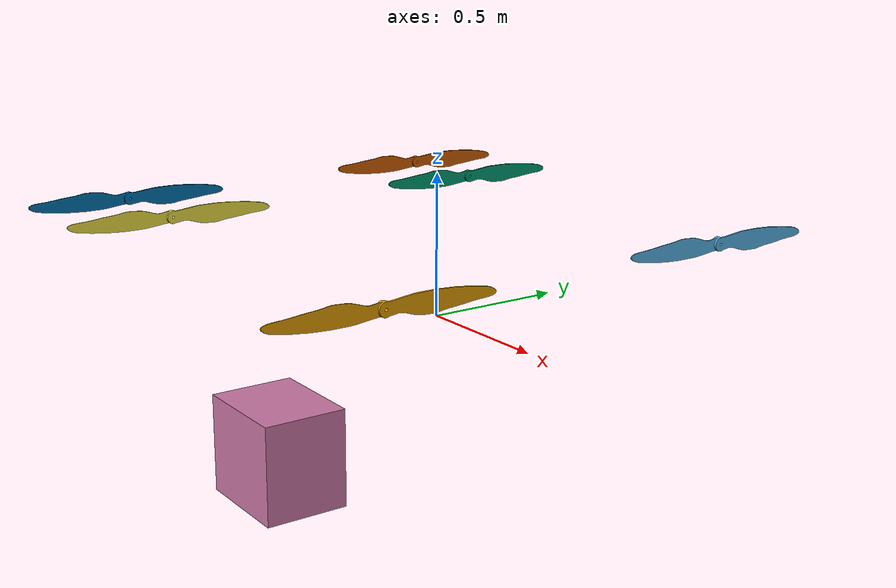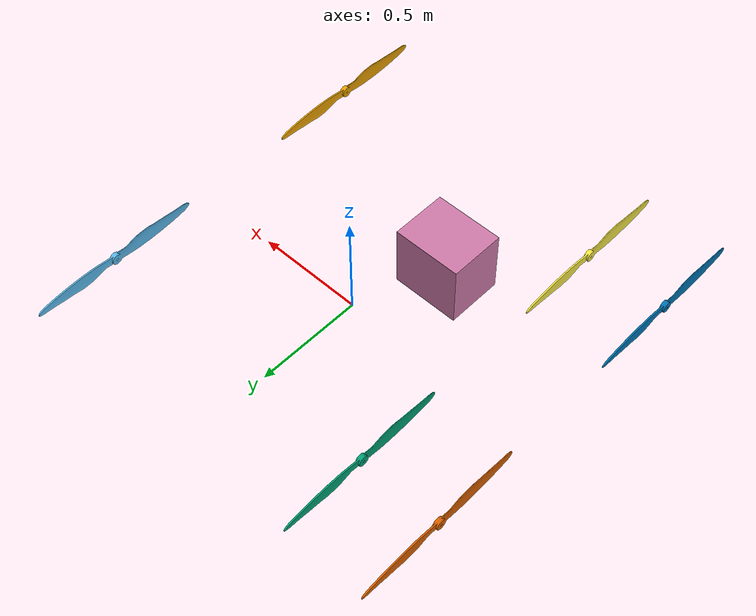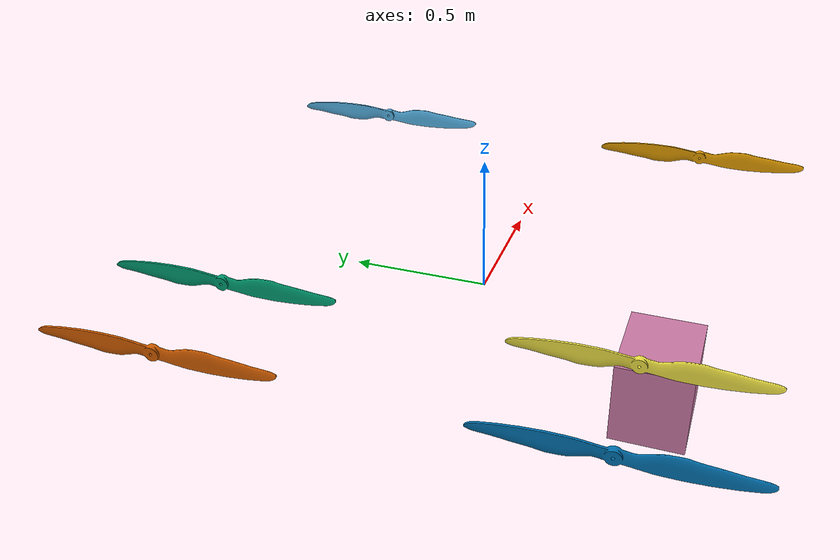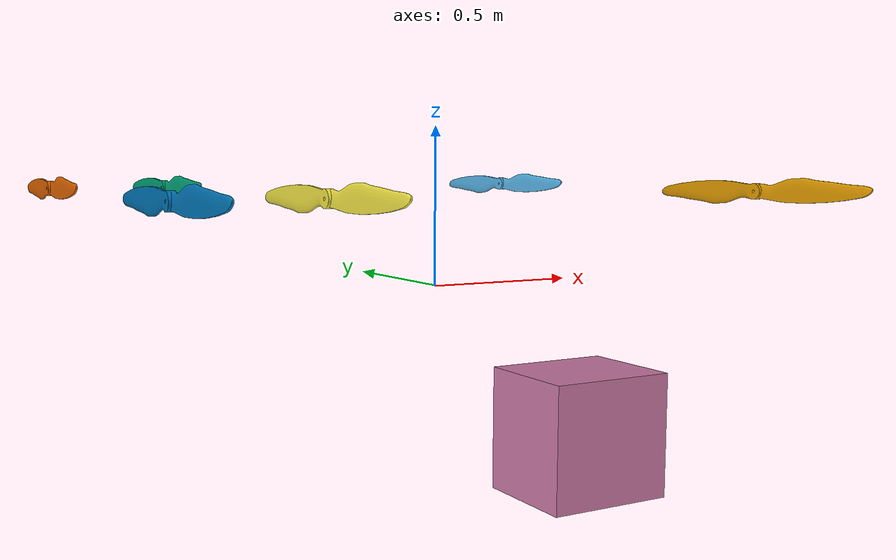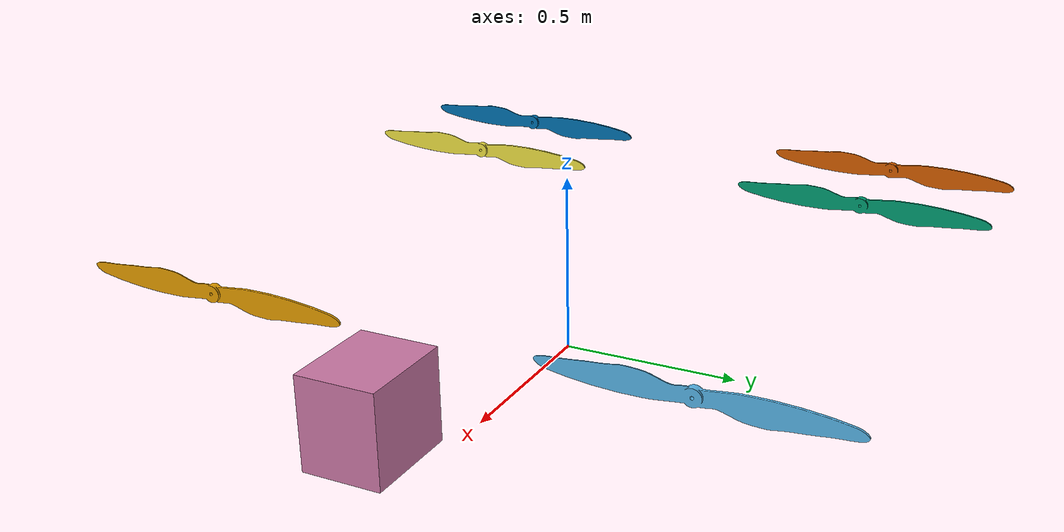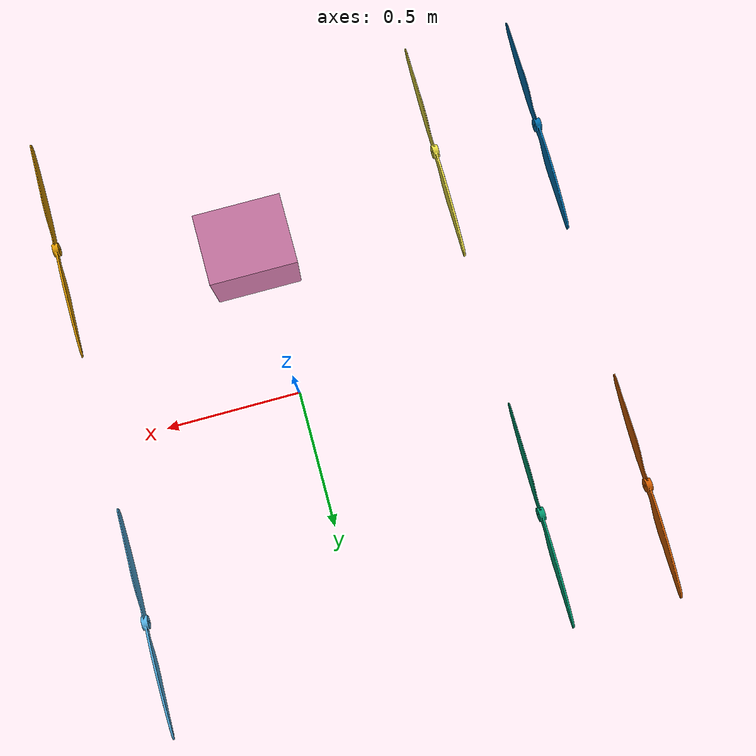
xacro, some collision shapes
<?xml version="1.0" ?>
<robot name="migbot1_ardupilot">
  <link name="helice1">
    <visual>
      <origin xyz="0 0 0" rpy="0 0 0"/>
      <geometry>
        <mesh filename="file:///home/ttrindader/SOFTX-MIG/github/ros_ws/src/xasv-sim/robots/migbot_description/urdf/meshes_WIP/xacro_test/meshes/helice.dae"/>
      </geometry>
    </visual>
    <collision>
      <origin xyz="1.5002675354480743e-05 -4.023313522338867e-07 1.825392246246338e-07" rpy="-1.5707963267948966 0.0 0.0"/>
      <geometry>
        <cylinder radius="0.03959999978542328" length="0.7714560329914093"/>
      </geometry>
    </collision>
    <inertial>
      <origin xyz="1.5002675354480743e-05 -4.023313522338867e-07 1.825392246246338e-07" rpy="0 0 0"/>
      <mass value="2.280356"/>
      <inertia ixx="0.113989" ixy="0.0" ixz="0.0" iyy="0.001788" iyz="0.0" izz="0.113989"/>
    </inertial>
  </link>
  <link name="helice3">
    <visual>
      <origin xyz="0 0 0" rpy="0 0 0"/>
      <geometry>
        <mesh filename="file:///home/ttrindader/SOFTX-MIG/github/ros_ws/src/xasv-sim/robots/migbot_description/urdf/meshes_WIP/xacro_test/meshes/helice.dae"/>
      </geometry>
    </visual>
    <collision>
      <origin xyz="1.5002675354480743e-05 -4.023313522338867e-07 1.825392246246338e-07" rpy="-1.5707963267948966 0.0 0.0"/>
      <geometry>
        <cylinder radius="0.03959999978542328" length="0.7714560329914093"/>
      </geometry>
    </collision>
    <inertial>
      <origin xyz="1.5002675354480743e-05 -4.023313522338867e-07 1.825392246246338e-07" rpy="0 0 0"/>
      <mass value="2.280356"/>
      <inertia ixx="0.113989" ixy="0.0" ixz="0.0" iyy="0.001788" iyz="0.0" izz="0.113989"/>
    </inertial>
  </link>
  <link name="helice2">
    <visual>
      <origin xyz="0 0 0" rpy="0 0 0"/>
      <geometry>
        <mesh filename="file:///home/ttrindader/SOFTX-MIG/github/ros_ws/src/xasv-sim/robots/migbot_description/urdf/meshes_WIP/xacro_test/meshes/helice.dae"/>
      </geometry>
    </visual>
    <collision>
      <origin xyz="1.5002675354480743e-05 -4.023313522338867e-07 1.825392246246338e-07" rpy="-1.5707963267948966 0.0 0.0"/>
      <geometry>
        <cylinder radius="0.03959999978542328" length="0.7714560329914093"/>
      </geometry>
    </collision>
    <inertial>
      <origin xyz="1.5002675354480743e-05 -4.023313522338867e-07 1.825392246246338e-07" rpy="0 0 0"/>
      <mass value="2.280356"/>
      <inertia ixx="0.113989" ixy="0.0" ixz="0.0" iyy="0.001788" iyz="0.0" izz="0.113989"/>
    </inertial>
  </link>
  <link name="helice4">
    <visual>
      <origin xyz="0 0 0" rpy="0 0 0"/>
      <geometry>
        <mesh filename="file:///home/ttrindader/SOFTX-MIG/github/ros_ws/src/xasv-sim/robots/migbot_description/urdf/meshes_WIP/xacro_test/meshes/helice.dae"/>
      </geometry>
    </visual>
    <collision>
      <origin xyz="-1.5002675354480743e-05 4.023313522338867e-07 1.825392246246338e-07" rpy="-1.5707963267948966 0.0 0.0"/>
      <geometry>
        <cylinder radius="0.03959999978542328" length="0.7714560329914093"/>
      </geometry>
    </collision>
    <inertial>
      <origin xyz="-1.5002675354480743e-05 4.023313522338867e-07 1.825392246246338e-07" rpy="0 0 0"/>
      <mass value="2.280356"/>
      <inertia ixx="0.113989" ixy="0.0" ixz="0.0" iyy="0.001788" iyz="0.0" izz="0.113989"/>
    </inertial>
  </link>
  <link name="helice6">
    <visual>
      <origin xyz="0 0 0" rpy="0 0 0"/>
      <geometry>
        <mesh filename="file:///home/ttrindader/SOFTX-MIG/github/ros_ws/src/xasv-sim/robots/migbot_description/urdf/meshes_WIP/xacro_test/meshes/helice.dae"/>
      </geometry>
    </visual>
    <collision>
      <origin xyz="1.5002675354480743e-05 -4.023313522338867e-07 1.825392246246338e-07" rpy="-1.5707963267948966 0.0 0.0"/>
      <geometry>
        <cylinder radius="0.03959999978542328" length="0.7714560329914093"/>
      </geometry>
    </collision>
    <inertial>
      <origin xyz="1.5002675354480743e-05 -4.023313522338867e-07 1.825392246246338e-07" rpy="0 0 0"/>
      <mass value="2.280356"/>
      <inertia ixx="0.113989" ixy="0.0" ixz="0.0" iyy="0.001788" iyz="0.0" izz="0.113989"/>
    </inertial>
  </link>
  <link name="helice5">
    <visual>
      <origin xyz="0 0 0" rpy="0 0 0"/>
      <geometry>
        <mesh filename="file:///home/ttrindader/SOFTX-MIG/github/ros_ws/src/xasv-sim/robots/migbot_description/urdf/meshes_WIP/xacro_test/meshes/helice.dae"/>
      </geometry>
    </visual>
    <collision>
      <origin xyz="1.5002675354480743e-05 -4.023313522338867e-07 1.825392246246338e-07" rpy="-1.5707963267948966 0.0 0.0"/>
      <geometry>
        <cylinder radius="0.03959999978542328" length="0.7714560329914093"/>
      </geometry>
    </collision>
    <inertial>
      <origin xyz="1.5002675354480743e-05 -4.023313522338867e-07 1.825392246246338e-07" rpy="0 0 0"/>
      <mass value="2.280356"/>
      <inertia ixx="0.113989" ixy="0.0" ixz="0.0" iyy="0.001788" iyz="0.0" izz="0.113989"/>
    </inertial>
  </link>
  <link name="base_link">
    <visual>
      <origin xyz="0 0 0" rpy="0 0 0"/>
      <geometry>
        <mesh filename="file:///home/ttrindader/SOFTX-MIG/github/ros_ws/src/xasv-sim/robots/migbot_description/urdf/meshes_WIP/xacro_test/meshes/base_link.dae"/>
      </geometry>
    </visual>
    <collision>
      <origin xyz="0.05516773462295532 -0.6606897711753845 -0.32718387246131897" rpy="0.0 -0.0 0.0"/>
      <geometry>
        <box size="0.3529626131057739 0.286358118057251 0.3340959846973419"/>
      </geometry>
    </collision>
    <collision>
      <origin xyz="0.055167555809020996 0.6391997337341309 -0.32718387246131897" rpy="0.0 -0.0 0.0"/>
      <geometry>
        <box size="2.301753044128418 0.28635841608047485 0.3340959846973419"/>
      </geometry>
    </collision>
    <collision>
      <origin xyz="0.05516773462295532 -0.663055419921875 -0.32718387246131897" rpy="0.0 -0.0 0.0"/>
      <geometry>
        <box size="2.301753044128418 0.28635841608047485 0.3340959846973419"/>
      </geometry>
    </collision>
    <collision>
      <origin xyz="-0.1442866325378418 -0.010295964777469635 0.13419264554977417" rpy="0.0 -0.0 0.0"/>
      <geometry>
        <box size="1.4632989168167114 0.5223059058189392 0.30197805166244507"/>
      </geometry>
    </collision>
    <collision>
      <origin xyz="0.5373154878616333 -0.012873165309429169 -0.23883980512619019" rpy="0.0 -0.0 0.0"/>
      <geometry>
        <box size="0.0503227561712265 0.05002070218324661 0.4810780882835388"/>
      </geometry>
    </collision>
    <collision>
      <origin xyz="-0.8626812696456909 -0.012873373925685883 -0.1777336150407791" rpy="0.0 -0.0 0.0"/>
      <geometry>
        <box size="0.09711700677871704 0.05002070963382721 0.3231997489929199"/>
      </geometry>
    </collision>
    <inertial>
      <origin xyz="0.05516764521598816 -0.01192784309387207 -0.10452509671449661" rpy="0 0 0"/>
      <mass value="1710.000440"/>
      <inertia ixx="446.193056" ixy="0.0" ixz="0.0" iyy="841.541570" iyz="0.0" izz="1114.601226"/>
    </inertial>
  </link>
  <joint name="helice1_joint" type="continuous">
    <parent link="base_link"/>
    <child link="helice1"/>
    <origin xyz="0.6777006387710571 -0.661690354347229 0.30481430888175964" rpy="0.0 -0.0 0.0"/>
    <axis xyz="0 1 0"/>
    <dynamics damping="0.05" friction="0.05"/>
  </joint>
  <joint name="helice3_joint" type="continuous">
    <parent link="base_link"/>
    <child link="helice3"/>
    <origin xyz="0.677700400352478 0.6386980414390564 0.30481430888175964" rpy="0.0 -0.0 0.0"/>
    <axis xyz="0 1 0"/>
    <dynamics damping="0.05" friction="0.05"/>
  </joint>
  <joint name="helice2_joint" type="continuous">
    <parent link="base_link"/>
    <child link="helice2"/>
    <origin xyz="-0.6773133873939514 0.6386978030204773 0.30481430888175964" rpy="0.0 -0.0 0.0"/>
    <axis xyz="0 1 0"/>
    <dynamics damping="0.05" friction="0.05"/>
  </joint>
  <joint name="helice4_joint" type="continuous">
    <parent link="base_link"/>
    <child link="helice4"/>
    <origin xyz="-0.6773132085800171 -0.6612994074821472 0.30481430888175964" rpy="0.0 -0.0 0.0"/>
    <axis xyz="0 1 0"/>
    <dynamics damping="0.05" friction="0.05"/>
  </joint>
  <joint name="helice6_joint" type="continuous">
    <parent link="base_link"/>
    <child link="helice6"/>
    <origin xyz="-1.0490235090255737 -0.6612994074821472 0.30481430888175964" rpy="0.0 -0.0 0.0"/>
    <axis xyz="0 1 0"/>
    <dynamics damping="0.05" friction="0.05"/>
  </joint>
  <joint name="helice5_joint" type="continuous">
    <parent link="base_link"/>
    <child link="helice5"/>
    <origin xyz="-1.0490237474441528 0.6389490962028503 0.30481430888175964" rpy="0.0 -0.0 0.0"/>
    <axis xyz="0 1 0"/>
    <dynamics damping="0.05" friction="0.05"/>
  </joint>
  <link name="imu_link">
    <collision>
      <origin xyz="0 0 0" rpy="0 0 0"/>
      <geometry>
        <box size="0.05 0.05 0.05"/>
      </geometry>
    </collision>
    <inertial>
      <origin xyz="0 0 0" rpy="0 0 0"/>
      <mass value="0.012500"/>
      <inertia ixx="0.000005" ixy="0.0" ixz="0.0" iyy="0.000005" iyz="0.0" izz="0.000005"/>
    </inertial>
  </link>
  <joint name="imu_joint" type="fixed">
    <parent link="base_link"/>
    <child link="imu_link"/>
    <origin xyz="0 0 0" rpy="0 0 0"/>
  </joint>
</robot>
